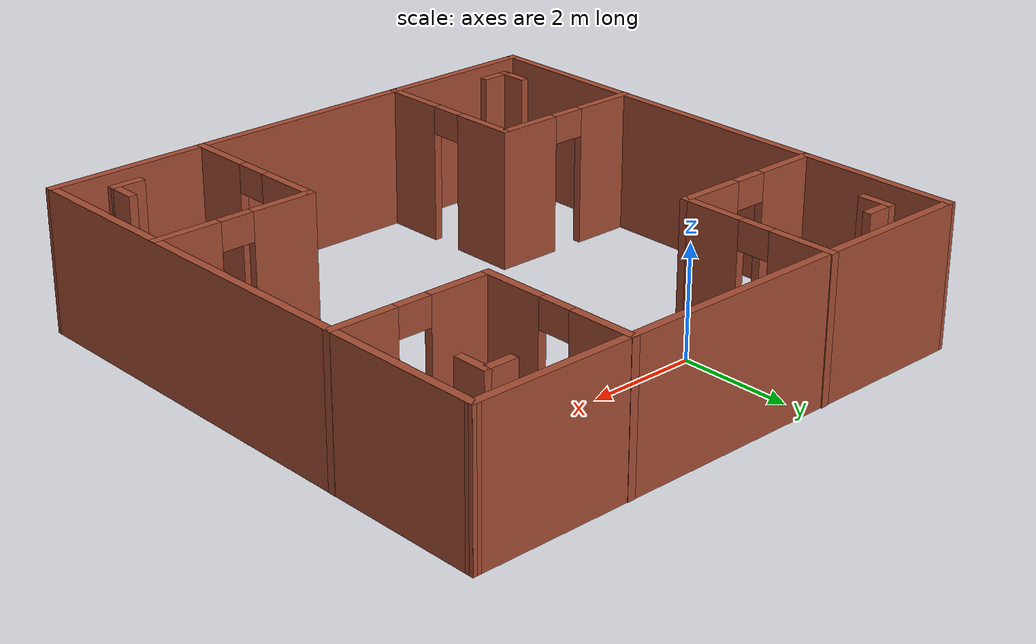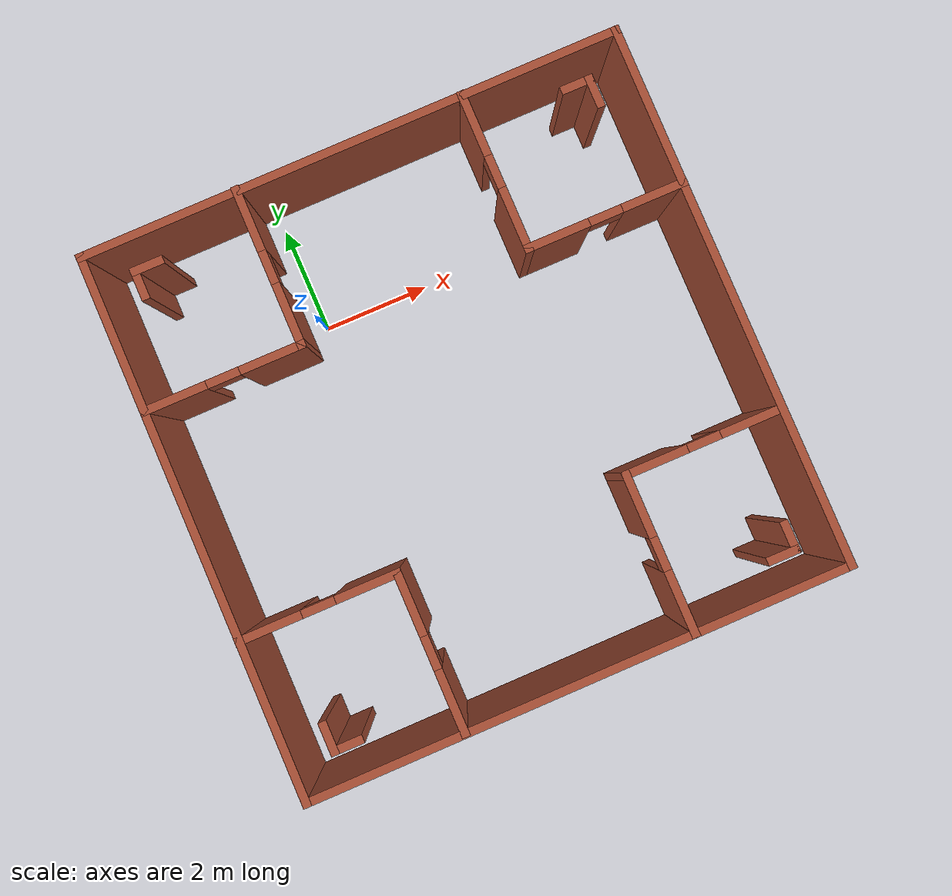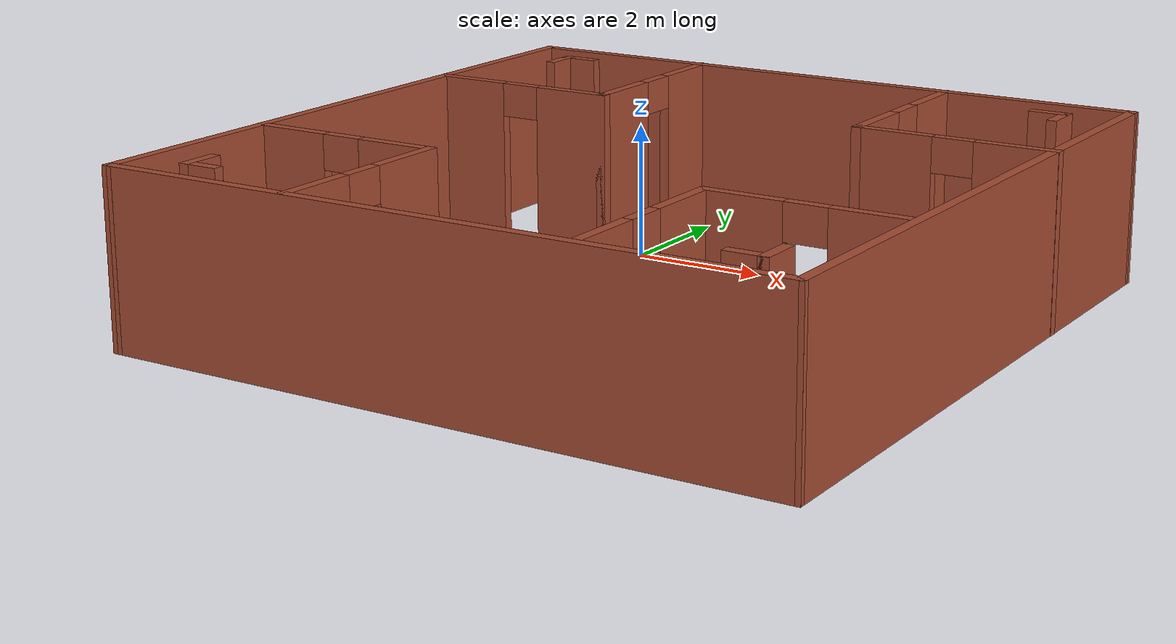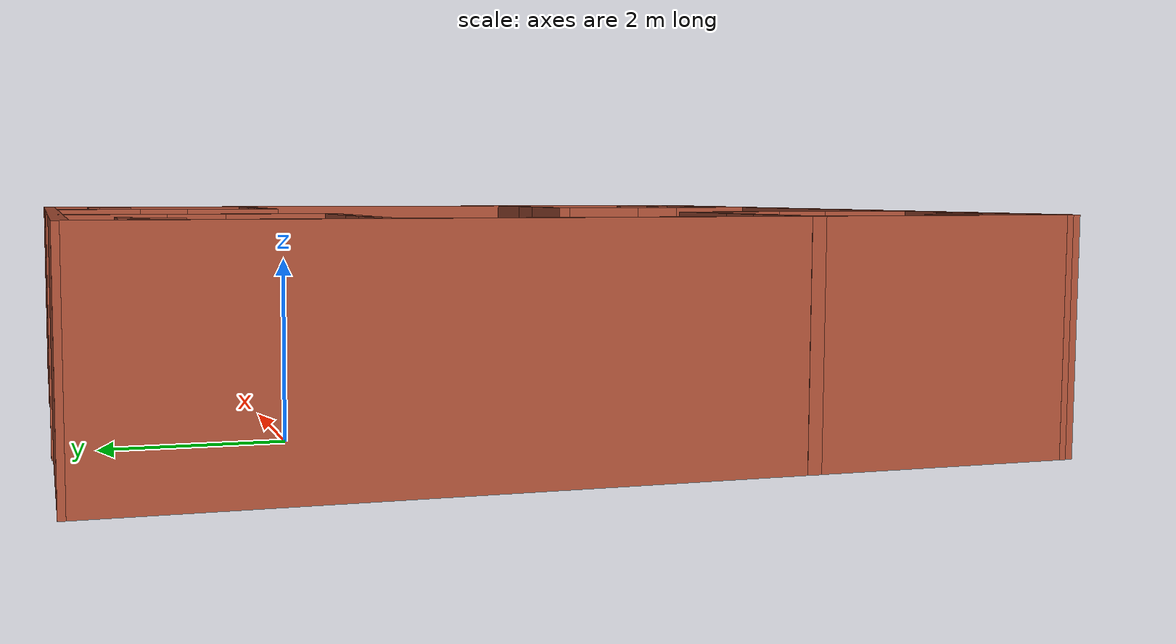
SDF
<?xml version='1.0'?>
<sdf version='1.7'>
  <model name='race_gaebo.world'>
    <pose>1.69608 -2.54282 0 0 -0 0</pose>
    <link name='Wall_11'>
      <pose>-2.06944 3.51255 0 0 -0 -1.5708</pose>
      <visual name='Wall_11_Visual_0'>
        <pose>-0.900458 0 1.25 0 -0 0</pose>
        <geometry>
          <box>
            <size>1.19908 0.15 2.5</size>
          </box>
        </geometry>
        <material>
          <script>
            <uri>file://media/materials/scripts/gazebo.material</uri>
            <name>Gazebo/Bricks</name>
          </script>
          <ambient>1 1 1 1</ambient>
        </material>
        <meta>
          <layer>0</layer>
        </meta>
      </visual>
      <collision name='Wall_11_Collision_0'>
        <geometry>
          <box>
            <size>1.19908 0.15 2.5</size>
          </box>
        </geometry>
        <pose>-0.900458 0 1.25 0 -0 0</pose>
      </collision>
      <visual name='Wall_11_Visual_1'>
        <pose>0.899542 0 1.25 0 -0 0</pose>
        <geometry>
          <box>
            <size>1.20092 0.15 2.5</size>
          </box>
        </geometry>
        <material>
          <script>
            <uri>file://media/materials/scripts/gazebo.material</uri>
            <name>Gazebo/Bricks</name>
          </script>
          <ambient>1 1 1 1</ambient>
        </material>
        <meta>
          <layer>0</layer>
        </meta>
      </visual>
      <collision name='Wall_11_Collision_1'>
        <geometry>
          <box>
            <size>1.20092 0.15 2.5</size>
          </box>
        </geometry>
        <pose>0.899542 0 1.25 0 -0 0</pose>
      </collision>
      <visual name='Wall_11_Visual_2'>
        <pose>-0.000916 0 2.25 0 -0 0</pose>
        <geometry>
          <box>
            <size>0.6 0.15 0.5</size>
          </box>
        </geometry>
        <material>
          <script>
            <uri>file://media/materials/scripts/gazebo.material</uri>
            <name>Gazebo/Bricks</name>
          </script>
          <ambient>1 1 1 1</ambient>
        </material>
        <meta>
          <layer>0</layer>
        </meta>
      </visual>
      <collision name='Wall_11_Collision_2'>
        <geometry>
          <box>
            <size>0.6 0.15 0.5</size>
          </box>
        </geometry>
        <pose>-0.000916 0 2.25 0 -0 0</pose>
      </collision>
    </link>
    <link name='Wall_12'>
      <pose>-3.49444 2.08755 0 0 -0 3.14159</pose>
      <visual name='Wall_12_Visual_0'>
        <pose>-0.90009 0 1.25 0 -0 0</pose>
        <geometry>
          <box>
            <size>1.19982 0.15 2.5</size>
          </box>
        </geometry>
        <material>
          <script>
            <uri>file://media/materials/scripts/gazebo.material</uri>
            <name>Gazebo/Bricks</name>
          </script>
          <ambient>1 1 1 1</ambient>
        </material>
        <meta>
          <layer>0</layer>
        </meta>
      </visual>
      <collision name='Wall_12_Collision_0'>
        <geometry>
          <box>
            <size>1.19982 0.15 2.5</size>
          </box>
        </geometry>
        <pose>-0.90009 0 1.25 0 -0 0</pose>
      </collision>
      <visual name='Wall_12_Visual_1'>
        <pose>0.89991 0 1.25 0 -0 0</pose>
        <geometry>
          <box>
            <size>1.20018 0.15 2.5</size>
          </box>
        </geometry>
        <material>
          <script>
            <uri>file://media/materials/scripts/gazebo.material</uri>
            <name>Gazebo/Bricks</name>
          </script>
          <ambient>1 1 1 1</ambient>
        </material>
        <meta>
          <layer>0</layer>
        </meta>
      </visual>
      <collision name='Wall_12_Collision_1'>
        <geometry>
          <box>
            <size>1.20018 0.15 2.5</size>
          </box>
        </geometry>
        <pose>0.89991 0 1.25 0 -0 0</pose>
      </collision>
      <visual name='Wall_12_Visual_2'>
        <pose>-0.000181 0 2.25 0 -0 0</pose>
        <geometry>
          <box>
            <size>0.6 0.15 0.5</size>
          </box>
        </geometry>
        <material>
          <script>
            <uri>file://media/materials/scripts/gazebo.material</uri>
            <name>Gazebo/Bricks</name>
          </script>
          <ambient>1 1 1 1</ambient>
        </material>
        <meta>
          <layer>0</layer>
        </meta>
      </visual>
      <collision name='Wall_12_Collision_2'>
        <geometry>
          <box>
            <size>0.6 0.15 0.5</size>
          </box>
        </geometry>
        <pose>-0.000181 0 2.25 0 -0 0</pose>
      </collision>
    </link>
    <link name='Wall_15'>
      <pose>2.08092 3.51282 0 0 -0 -1.5708</pose>
      <visual name='Wall_15_Visual_0'>
        <pose>-0.899164 0 1.25 0 -0 0</pose>
        <geometry>
          <box>
            <size>1.20167 0.15 2.5</size>
          </box>
        </geometry>
        <material>
          <script>
            <uri>file://media/materials/scripts/gazebo.material</uri>
            <name>Gazebo/Bricks</name>
          </script>
          <ambient>1 1 1 1</ambient>
        </material>
        <meta>
          <layer>0</layer>
        </meta>
      </visual>
      <collision name='Wall_15_Collision_0'>
        <geometry>
          <box>
            <size>1.20167 0.15 2.5</size>
          </box>
        </geometry>
        <pose>-0.899164 0 1.25 0 -0 0</pose>
      </collision>
      <visual name='Wall_15_Visual_1'>
        <pose>0.900836 0 1.25 0 -0 0</pose>
        <geometry>
          <box>
            <size>1.19833 0.15 2.5</size>
          </box>
        </geometry>
        <material>
          <script>
            <uri>file://media/materials/scripts/gazebo.material</uri>
            <name>Gazebo/Bricks</name>
          </script>
          <ambient>1 1 1 1</ambient>
        </material>
        <meta>
          <layer>0</layer>
        </meta>
      </visual>
      <collision name='Wall_15_Collision_1'>
        <geometry>
          <box>
            <size>1.19833 0.15 2.5</size>
          </box>
        </geometry>
        <pose>0.900836 0 1.25 0 -0 0</pose>
      </collision>
      <visual name='Wall_15_Visual_2'>
        <pose>0.001672 0 2.25 0 -0 0</pose>
        <geometry>
          <box>
            <size>0.6 0.15 0.5</size>
          </box>
        </geometry>
        <material>
          <script>
            <uri>file://media/materials/scripts/gazebo.material</uri>
            <name>Gazebo/Bricks</name>
          </script>
          <ambient>1 1 1 1</ambient>
        </material>
        <meta>
          <layer>0</layer>
        </meta>
      </visual>
      <collision name='Wall_15_Collision_2'>
        <geometry>
          <box>
            <size>0.6 0.15 0.5</size>
          </box>
        </geometry>
        <pose>0.001672 0 2.25 0 -0 0</pose>
      </collision>
    </link>
    <link name='Wall_16'>
      <pose>3.50592 2.08782 0 0 -0 0</pose>
      <visual name='Wall_16_Visual_0'>
        <pose>-0.90042 0 1.25 0 -0 0</pose>
        <geometry>
          <box>
            <size>1.19916 0.15 2.5</size>
          </box>
        </geometry>
        <material>
          <script>
            <uri>file://media/materials/scripts/gazebo.material</uri>
            <name>Gazebo/Bricks</name>
          </script>
          <ambient>1 1 1 1</ambient>
        </material>
        <meta>
          <layer>0</layer>
        </meta>
      </visual>
      <collision name='Wall_16_Collision_0'>
        <geometry>
          <box>
            <size>1.19916 0.15 2.5</size>
          </box>
        </geometry>
        <pose>-0.90042 0 1.25 0 -0 0</pose>
      </collision>
      <visual name='Wall_16_Visual_1'>
        <pose>0.89958 0 1.25 0 -0 0</pose>
        <geometry>
          <box>
            <size>1.20084 0.15 2.5</size>
          </box>
        </geometry>
        <material>
          <script>
            <uri>file://media/materials/scripts/gazebo.material</uri>
            <name>Gazebo/Bricks</name>
          </script>
          <ambient>1 1 1 1</ambient>
        </material>
        <meta>
          <layer>0</layer>
        </meta>
      </visual>
      <collision name='Wall_16_Collision_1'>
        <geometry>
          <box>
            <size>1.20084 0.15 2.5</size>
          </box>
        </geometry>
        <pose>0.89958 0 1.25 0 -0 0</pose>
      </collision>
      <visual name='Wall_16_Visual_2'>
        <pose>-0.00084 0 2.25 0 -0 0</pose>
        <geometry>
          <box>
            <size>0.6 0.15 0.5</size>
          </box>
        </geometry>
        <material>
          <script>
            <uri>file://media/materials/scripts/gazebo.material</uri>
            <name>Gazebo/Bricks</name>
          </script>
          <ambient>1 1 1 1</ambient>
        </material>
        <meta>
          <layer>0</layer>
        </meta>
      </visual>
      <collision name='Wall_16_Collision_2'>
        <geometry>
          <box>
            <size>0.6 0.15 0.5</size>
          </box>
        </geometry>
        <pose>-0.00084 0 2.25 0 -0 0</pose>
      </collision>
    </link>
    <link name='Wall_2'>
      <collision name='Wall_2_Collision'>
        <geometry>
          <box>
            <size>10 0.15 2.5</size>
          </box>
        </geometry>
        <pose>0 0 1.25 0 -0 0</pose>
      </collision>
      <visual name='Wall_2_Visual'>
        <pose>0 0 1.25 0 -0 0</pose>
        <geometry>
          <box>
            <size>10 0.15 2.5</size>
          </box>
        </geometry>
        <material>
          <script>
            <uri>file://media/materials/scripts/gazebo.material</uri>
            <name>Gazebo/Bricks</name>
          </script>
          <ambient>1 1 1 1</ambient>
        </material>
        <meta>
          <layer>0</layer>
        </meta>
      </visual>
      <pose>-4.92501 -0.012824 0 0 -0 -1.572</pose>
    </link>
    <link name='Wall_21'>
      <pose>-3.5059 -2.06244 0 0 -0 0</pose>
      <visual name='Wall_21_Visual_0'>
        <pose>-0.900292 0 1.25 0 -0 0</pose>
        <geometry>
          <box>
            <size>1.19942 0.15 2.5</size>
          </box>
        </geometry>
        <material>
          <script>
            <uri>file://media/materials/scripts/gazebo.material</uri>
            <name>Gazebo/Bricks</name>
          </script>
          <ambient>1 1 1 1</ambient>
        </material>
        <meta>
          <layer>0</layer>
        </meta>
      </visual>
      <collision name='Wall_21_Collision_0'>
        <geometry>
          <box>
            <size>1.19942 0.15 2.5</size>
          </box>
        </geometry>
        <pose>-0.900292 0 1.25 0 -0 0</pose>
      </collision>
      <visual name='Wall_21_Visual_1'>
        <pose>0.899708 0 1.25 0 -0 0</pose>
        <geometry>
          <box>
            <size>1.20058 0.15 2.5</size>
          </box>
        </geometry>
        <material>
          <script>
            <uri>file://media/materials/scripts/gazebo.material</uri>
            <name>Gazebo/Bricks</name>
          </script>
          <ambient>1 1 1 1</ambient>
        </material>
        <meta>
          <layer>0</layer>
        </meta>
      </visual>
      <collision name='Wall_21_Collision_1'>
        <geometry>
          <box>
            <size>1.20058 0.15 2.5</size>
          </box>
        </geometry>
        <pose>0.899708 0 1.25 0 -0 0</pose>
      </collision>
      <visual name='Wall_21_Visual_2'>
        <pose>-0.000584 0 2.25 0 -0 0</pose>
        <geometry>
          <box>
            <size>0.6 0.15 0.5</size>
          </box>
        </geometry>
        <material>
          <script>
            <uri>file://media/materials/scripts/gazebo.material</uri>
            <name>Gazebo/Bricks</name>
          </script>
          <ambient>1 1 1 1</ambient>
        </material>
        <meta>
          <layer>0</layer>
        </meta>
      </visual>
      <collision name='Wall_21_Collision_2'>
        <geometry>
          <box>
            <size>0.6 0.15 0.5</size>
          </box>
        </geometry>
        <pose>-0.000584 0 2.25 0 -0 0</pose>
      </collision>
    </link>
    <link name='Wall_22'>
      <pose>-2.0809 -3.48745 0 0 -0 -1.5708</pose>
      <visual name='Wall_22_Visual_0'>
        <pose>-0.900086 0 1.25 0 -0 0</pose>
        <geometry>
          <box>
            <size>1.19983 0.15 2.5</size>
          </box>
        </geometry>
        <material>
          <script>
            <uri>file://media/materials/scripts/gazebo.material</uri>
            <name>Gazebo/Bricks</name>
          </script>
          <ambient>1 1 1 1</ambient>
        </material>
        <meta>
          <layer>0</layer>
        </meta>
      </visual>
      <collision name='Wall_22_Collision_0'>
        <geometry>
          <box>
            <size>1.19983 0.15 2.5</size>
          </box>
        </geometry>
        <pose>-0.900086 0 1.25 0 -0 0</pose>
      </collision>
      <visual name='Wall_22_Visual_1'>
        <pose>0.899914 0 1.25 0 -0 0</pose>
        <geometry>
          <box>
            <size>1.20017 0.15 2.5</size>
          </box>
        </geometry>
        <material>
          <script>
            <uri>file://media/materials/scripts/gazebo.material</uri>
            <name>Gazebo/Bricks</name>
          </script>
          <ambient>1 1 1 1</ambient>
        </material>
        <meta>
          <layer>0</layer>
        </meta>
      </visual>
      <collision name='Wall_22_Collision_1'>
        <geometry>
          <box>
            <size>1.20017 0.15 2.5</size>
          </box>
        </geometry>
        <pose>0.899914 0 1.25 0 -0 0</pose>
      </collision>
      <visual name='Wall_22_Visual_2'>
        <pose>-0.000172 0 2.25 0 -0 0</pose>
        <geometry>
          <box>
            <size>0.6 0.15 0.5</size>
          </box>
        </geometry>
        <material>
          <script>
            <uri>file://media/materials/scripts/gazebo.material</uri>
            <name>Gazebo/Bricks</name>
          </script>
          <ambient>1 1 1 1</ambient>
        </material>
        <meta>
          <layer>0</layer>
        </meta>
      </visual>
      <collision name='Wall_22_Collision_2'>
        <geometry>
          <box>
            <size>0.6 0.15 0.5</size>
          </box>
        </geometry>
        <pose>-0.000172 0 2.25 0 -0 0</pose>
      </collision>
    </link>
    <link name='Wall_25'>
      <pose>3.49445 -2.06217 0 0 -0 3.14159</pose>
      <visual name='Wall_25_Visual_0'>
        <pose>-0.899084 0 1.25 0 -0 0</pose>
        <geometry>
          <box>
            <size>1.20183 0.15 2.5</size>
          </box>
        </geometry>
        <material>
          <script>
            <uri>file://media/materials/scripts/gazebo.material</uri>
            <name>Gazebo/Bricks</name>
          </script>
          <ambient>1 1 1 1</ambient>
        </material>
        <meta>
          <layer>0</layer>
        </meta>
      </visual>
      <collision name='Wall_25_Collision_0'>
        <geometry>
          <box>
            <size>1.20183 0.15 2.5</size>
          </box>
        </geometry>
        <pose>-0.899084 0 1.25 0 -0 0</pose>
      </collision>
      <visual name='Wall_25_Visual_1'>
        <pose>0.900916 0 1.25 0 -0 0</pose>
        <geometry>
          <box>
            <size>1.19817 0.15 2.5</size>
          </box>
        </geometry>
        <material>
          <script>
            <uri>file://media/materials/scripts/gazebo.material</uri>
            <name>Gazebo/Bricks</name>
          </script>
          <ambient>1 1 1 1</ambient>
        </material>
        <meta>
          <layer>0</layer>
        </meta>
      </visual>
      <collision name='Wall_25_Collision_1'>
        <geometry>
          <box>
            <size>1.19817 0.15 2.5</size>
          </box>
        </geometry>
        <pose>0.900916 0 1.25 0 -0 0</pose>
      </collision>
      <visual name='Wall_25_Visual_2'>
        <pose>0.001831 0 2.25 0 -0 0</pose>
        <geometry>
          <box>
            <size>0.6 0.15 0.5</size>
          </box>
        </geometry>
        <material>
          <script>
            <uri>file://media/materials/scripts/gazebo.material</uri>
            <name>Gazebo/Bricks</name>
          </script>
          <ambient>1 1 1 1</ambient>
        </material>
        <meta>
          <layer>0</layer>
        </meta>
      </visual>
      <collision name='Wall_25_Collision_2'>
        <geometry>
          <box>
            <size>0.6 0.15 0.5</size>
          </box>
        </geometry>
        <pose>0.001831 0 2.25 0 -0 0</pose>
      </collision>
    </link>
    <link name='Wall_26'>
      <pose>2.06945 -3.48717 0 0 -0 -1.5708</pose>
      <visual name='Wall_26_Visual_0'>
        <pose>-0.898441 0 1.25 0 -0 0</pose>
        <geometry>
          <box>
            <size>1.20312 0.15 2.5</size>
          </box>
        </geometry>
        <material>
          <script>
            <uri>file://media/materials/scripts/gazebo.material</uri>
            <name>Gazebo/Bricks</name>
          </script>
          <ambient>1 1 1 1</ambient>
        </material>
        <meta>
          <layer>0</layer>
        </meta>
      </visual>
      <collision name='Wall_26_Collision_0'>
        <geometry>
          <box>
            <size>1.20312 0.15 2.5</size>
          </box>
        </geometry>
        <pose>-0.898441 0 1.25 0 -0 0</pose>
      </collision>
      <visual name='Wall_26_Visual_1'>
        <pose>0.901559 0 1.25 0 -0 0</pose>
        <geometry>
          <box>
            <size>1.19688 0.15 2.5</size>
          </box>
        </geometry>
        <material>
          <script>
            <uri>file://media/materials/scripts/gazebo.material</uri>
            <name>Gazebo/Bricks</name>
          </script>
          <ambient>1 1 1 1</ambient>
        </material>
        <meta>
          <layer>0</layer>
        </meta>
      </visual>
      <collision name='Wall_26_Collision_1'>
        <geometry>
          <box>
            <size>1.19688 0.15 2.5</size>
          </box>
        </geometry>
        <pose>0.901559 0 1.25 0 -0 0</pose>
      </collision>
      <visual name='Wall_26_Visual_2'>
        <pose>0.003117 0 2.25 0 -0 0</pose>
        <geometry>
          <box>
            <size>0.6 0.15 0.5</size>
          </box>
        </geometry>
        <material>
          <script>
            <uri>file://media/materials/scripts/gazebo.material</uri>
            <name>Gazebo/Bricks</name>
          </script>
          <ambient>1 1 1 1</ambient>
        </material>
        <meta>
          <layer>0</layer>
        </meta>
      </visual>
      <collision name='Wall_26_Collision_2'>
        <geometry>
          <box>
            <size>0.6 0.15 0.5</size>
          </box>
        </geometry>
        <pose>0.003117 0 2.25 0 -0 0</pose>
      </collision>
    </link>
    <link name='Wall_32'>
      <collision name='Wall_32_Collision'>
        <geometry>
          <box>
            <size>0.6 0.15 2.5</size>
          </box>
        </geometry>
        <pose>0 0 1.25 0 -0 0</pose>
      </collision>
      <visual name='Wall_32_Visual'>
        <pose>0 0 1.25 0 -0 0</pose>
        <geometry>
          <box>
            <size>0.6 0.15 2.5</size>
          </box>
        </geometry>
        <material>
          <script>
            <uri>file://media/materials/scripts/gazebo.material</uri>
            <name>Gazebo/Bricks</name>
          </script>
          <ambient>1 1 1 1</ambient>
        </material>
        <meta>
          <layer>0</layer>
        </meta>
      </visual>
      <pose>-3.94408 4.33782 0 0 -0 0</pose>
    </link>
    <link name='Wall_34'>
      <collision name='Wall_34_Collision'>
        <geometry>
          <box>
            <size>0.6 0.15 2.5</size>
          </box>
        </geometry>
        <pose>0 0 1.25 0 -0 0</pose>
      </collision>
      <visual name='Wall_34_Visual'>
        <pose>0 0 1.25 0 -0 0</pose>
        <geometry>
          <box>
            <size>0.6 0.15 2.5</size>
          </box>
        </geometry>
        <material>
          <script>
            <uri>file://media/materials/scripts/gazebo.material</uri>
            <name>Gazebo/Bricks</name>
          </script>
          <ambient>1 1 1 1</ambient>
        </material>
        <meta>
          <layer>0</layer>
        </meta>
      </visual>
      <pose>-4.16908 4.11282 0 0 -0 -1.5708</pose>
    </link>
    <link name='Wall_4'>
      <collision name='Wall_4_Collision'>
        <geometry>
          <box>
            <size>10 0.15 2.5</size>
          </box>
        </geometry>
        <pose>0 0 1.25 0 -0 0</pose>
      </collision>
      <visual name='Wall_4_Visual'>
        <pose>0 0 1.25 0 -0 0</pose>
        <geometry>
          <box>
            <size>10 0.15 2.5</size>
          </box>
        </geometry>
        <material>
          <script>
            <uri>file://media/materials/scripts/gazebo.material</uri>
            <name>Gazebo/Bricks</name>
          </script>
          <ambient>1 1 1 1</ambient>
        </material>
        <meta>
          <layer>0</layer>
        </meta>
      </visual>
      <pose>0.005918 4.925 0 0 -0 0.002604</pose>
    </link>
    <link name='Wall_40'>
      <collision name='Wall_40_Collision'>
        <geometry>
          <box>
            <size>0.6 0.15 2.5</size>
          </box>
        </geometry>
        <pose>0 0 1.25 0 -0 0</pose>
      </collision>
      <visual name='Wall_40_Visual'>
        <pose>0 0 1.25 0 -0 0</pose>
        <geometry>
          <box>
            <size>0.6 0.15 2.5</size>
          </box>
        </geometry>
        <material>
          <script>
            <uri>file://media/materials/scripts/gazebo.material</uri>
            <name>Gazebo/Bricks</name>
          </script>
          <ambient>1 1 1 1</ambient>
        </material>
        <meta>
          <layer>0</layer>
        </meta>
      </visual>
      <pose>4.18092 4.11282 0 0 -0 -1.5708</pose>
    </link>
    <link name='Wall_42'>
      <collision name='Wall_42_Collision'>
        <geometry>
          <box>
            <size>0.6 0.15 2.5</size>
          </box>
        </geometry>
        <pose>0 0 1.25 0 -0 0</pose>
      </collision>
      <visual name='Wall_42_Visual'>
        <pose>0 0 1.25 0 -0 0</pose>
        <geometry>
          <box>
            <size>0.6 0.15 2.5</size>
          </box>
        </geometry>
        <material>
          <script>
            <uri>file://media/materials/scripts/gazebo.material</uri>
            <name>Gazebo/Bricks</name>
          </script>
          <ambient>1 1 1 1</ambient>
        </material>
        <meta>
          <layer>0</layer>
        </meta>
      </visual>
      <pose>3.95592 4.33782 0 0 -0 3.14159</pose>
    </link>
    <link name='Wall_49'>
      <collision name='Wall_49_Collision'>
        <geometry>
          <box>
            <size>0.6 0.15 2.5</size>
          </box>
        </geometry>
        <pose>0 0 1.25 0 -0 0</pose>
      </collision>
      <visual name='Wall_49_Visual'>
        <pose>0 0 1.25 0 -0 0</pose>
        <geometry>
          <box>
            <size>0.6 0.15 2.5</size>
          </box>
        </geometry>
        <material>
          <script>
            <uri>file://media/materials/scripts/gazebo.material</uri>
            <name>Gazebo/Bricks</name>
          </script>
          <ambient>1 1 1 1</ambient>
        </material>
        <meta>
          <layer>0</layer>
        </meta>
      </visual>
      <pose>-4.18093 -4.11282 0 0 -0 1.5708</pose>
    </link>
    <link name='Wall_51'>
      <collision name='Wall_51_Collision'>
        <geometry>
          <box>
            <size>0.6 0.15 2.5</size>
          </box>
        </geometry>
        <pose>0 0 1.25 0 -0 0</pose>
      </collision>
      <visual name='Wall_51_Visual'>
        <pose>0 0 1.25 0 -0 0</pose>
        <geometry>
          <box>
            <size>0.6 0.15 2.5</size>
          </box>
        </geometry>
        <material>
          <script>
            <uri>file://media/materials/scripts/gazebo.material</uri>
            <name>Gazebo/Bricks</name>
          </script>
          <ambient>1 1 1 1</ambient>
        </material>
        <meta>
          <layer>0</layer>
        </meta>
      </visual>
      <pose>-3.95593 -4.33782 0 0 -0 0</pose>
    </link>
    <link name='Wall_57'>
      <collision name='Wall_57_Collision'>
        <geometry>
          <box>
            <size>0.6 0.15 2.5</size>
          </box>
        </geometry>
        <pose>0 0 1.25 0 -0 0</pose>
      </collision>
      <visual name='Wall_57_Visual'>
        <pose>0 0 1.25 0 -0 0</pose>
        <geometry>
          <box>
            <size>0.6 0.15 2.5</size>
          </box>
        </geometry>
        <material>
          <script>
            <uri>file://media/materials/scripts/gazebo.material</uri>
            <name>Gazebo/Bricks</name>
          </script>
          <ambient>1 1 1 1</ambient>
        </material>
        <meta>
          <layer>0</layer>
        </meta>
      </visual>
      <pose>4.16945 -4.08717 0 0 -0 1.5708</pose>
    </link>
    <link name='Wall_59'>
      <collision name='Wall_59_Collision'>
        <geometry>
          <box>
            <size>0.6 0.15 2.5</size>
          </box>
        </geometry>
        <pose>0 0 1.25 0 -0 0</pose>
      </collision>
      <visual name='Wall_59_Visual'>
        <pose>0 0 1.25 0 -0 0</pose>
        <geometry>
          <box>
            <size>0.6 0.15 2.5</size>
          </box>
        </geometry>
        <material>
          <script>
            <uri>file://media/materials/scripts/gazebo.material</uri>
            <name>Gazebo/Bricks</name>
          </script>
          <ambient>1 1 1 1</ambient>
        </material>
        <meta>
          <layer>0</layer>
        </meta>
      </visual>
      <pose>3.94445 -4.31217 0 0 -0 3.14159</pose>
    </link>
    <link name='Wall_6'>
      <collision name='Wall_6_Collision'>
        <geometry>
          <box>
            <size>10 0.15 2.5</size>
          </box>
        </geometry>
        <pose>0 0 1.25 0 -0 0</pose>
      </collision>
      <visual name='Wall_6_Visual'>
        <pose>0 0 1.25 0 -0 0</pose>
        <geometry>
          <box>
            <size>10 0.15 2.5</size>
          </box>
        </geometry>
        <material>
          <script>
            <uri>file://media/materials/scripts/gazebo.material</uri>
            <name>Gazebo/Bricks</name>
          </script>
          <ambient>1 1 1 1</ambient>
        </material>
        <meta>
          <layer>0</layer>
        </meta>
      </visual>
      <pose>4.92518 0.012824 0 0 -0 -1.57196</pose>
    </link>
    <link name='Wall_8'>
      <collision name='Wall_8_Collision'>
        <geometry>
          <box>
            <size>10.0004 0.15 2.5</size>
          </box>
        </geometry>
        <pose>0 0 1.25 0 -0 0</pose>
      </collision>
      <visual name='Wall_8_Visual'>
        <pose>0 0 1.25 0 -0 0</pose>
        <geometry>
          <box>
            <size>10.0004 0.15 2.5</size>
          </box>
        </geometry>
        <material>
          <script>
            <uri>file://media/materials/scripts/gazebo.material</uri>
            <name>Gazebo/Bricks</name>
          </script>
          <ambient>1 1 1 1</ambient>
        </material>
        <meta>
          <layer>0</layer>
        </meta>
      </visual>
      <pose>-0.005741 -4.925 0 0 -0 0.002604</pose>
    </link>
    <static>1</static>
  </model>
</sdf>
